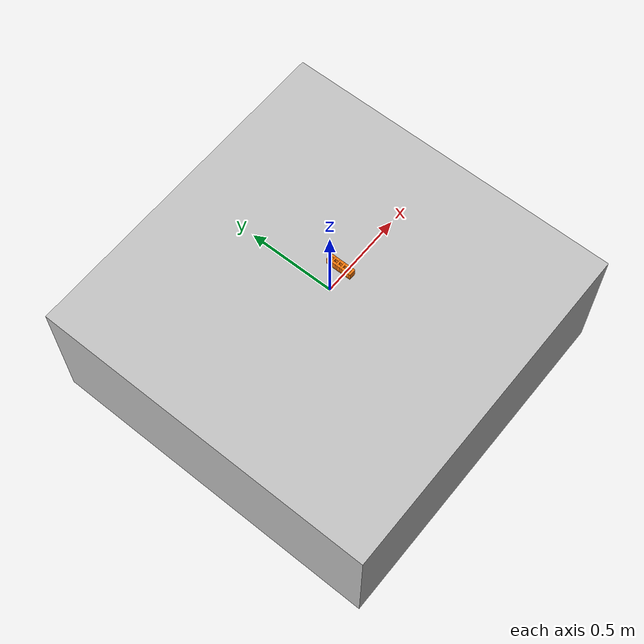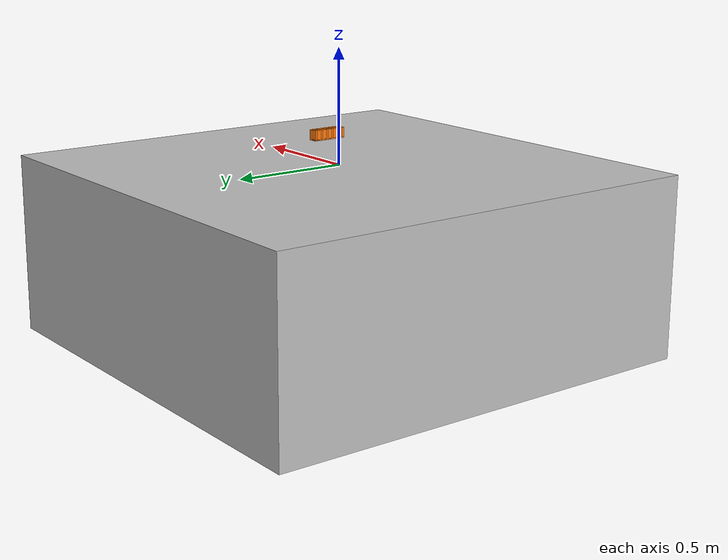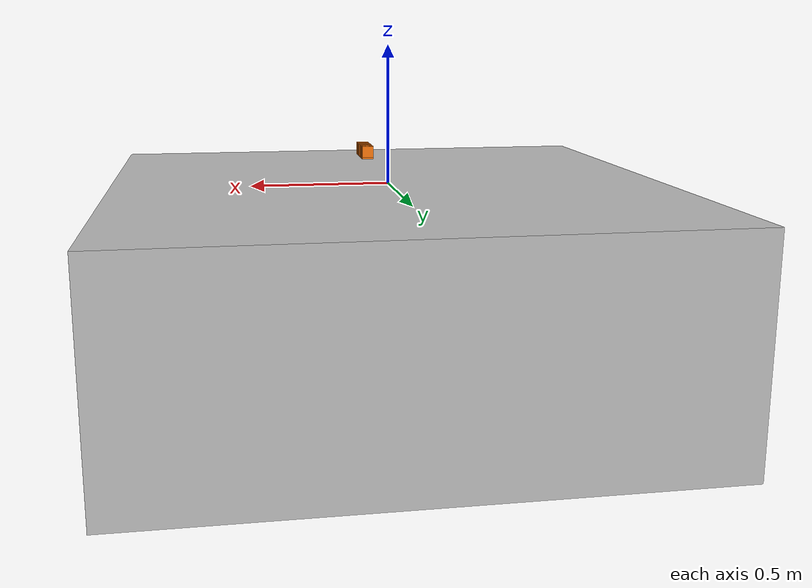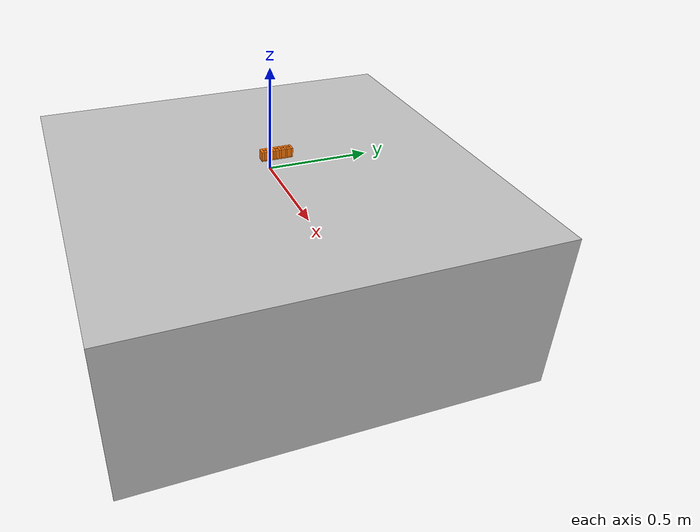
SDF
<sdf version="1.8">
 <world name="ur_hande_dual_arm_tabletop">
  <model name="table">
   <static>true</static>
   <pose>0 0 -0.4 0 0 0</pose>
   <link name="table_link">
    <collision name="table_collision">
     <geometry><box><size>2 2 0.8</size></box></geometry>
     <surface>
      <friction><ode><mu>1</mu><mu2>1</mu2></ode></friction>
      <contact><ode><max_vel>0.2</max_vel><min_depth>0.001</min_depth></ode></contact>
     </surface>
    </collision>
    <visual name="table_visual">
     <geometry><box><size>2 2 0.8</size></box></geometry>
     <material>
      <ambient>0.75 0.75 0.75 1</ambient>
      <diffuse>0.75 0.75 0.75 1</diffuse>
      <specular>0.1 0.1 0.1 1</specular>
     </material>
    </visual>
   </link>
  </model>
  <model name="Sync_CableReceiverBox">
   <static>true</static>
   <pose>0.085 0 0.1225 0 -1.5708 0</pose>
   <link name="body_link">
    <collision name="port_frame_gap_0_collision">
     <pose>0 -0.0696 0 0 0 0</pose>
     <geometry><box><size>0.045 0.0108 0.04</size></box></geometry>
     <surface>
      <friction><ode><mu>1</mu><mu2>1</mu2></ode></friction>
      <contact><ode><max_vel>0.2</max_vel><min_depth>0.001</min_depth></ode></contact>
     </surface>
    </collision>
    <collision name="port_frame_gap_1_collision">
     <pose>0 -0.04215 0 0 0 0</pose>
     <geometry><box><size>0.045 0.0113 0.04</size></box></geometry>
     <surface>
      <friction><ode><mu>1</mu><mu2>1</mu2></ode></friction>
      <contact><ode><max_vel>0.2</max_vel><min_depth>0.001</min_depth></ode></contact>
     </surface>
    </collision>
    <collision name="port_frame_gap_2_collision">
     <pose>0 -0.01425 0 0 0 0</pose>
     <geometry><box><size>0.045 0.0105 0.04</size></box></geometry>
     <surface>
      <friction><ode><mu>1</mu><mu2>1</mu2></ode></friction>
      <contact><ode><max_vel>0.2</max_vel><min_depth>0.001</min_depth></ode></contact>
     </surface>
    </collision>
    <collision name="port_frame_gap_3_collision">
     <pose>0 0.01375 0 0 0 0</pose>
     <geometry><box><size>0.045 0.0095 0.04</size></box></geometry>
     <surface>
      <friction><ode><mu>1</mu><mu2>1</mu2></ode></friction>
      <contact><ode><max_vel>0.2</max_vel><min_depth>0.001</min_depth></ode></contact>
     </surface>
    </collision>
    <collision name="port_frame_gap_4_collision">
     <pose>0 0.04175 0 0 0 0</pose>
     <geometry><box><size>0.045 0.0085 0.04</size></box></geometry>
     <surface>
      <friction><ode><mu>1</mu><mu2>1</mu2></ode></friction>
      <contact><ode><max_vel>0.2</max_vel><min_depth>0.001</min_depth></ode></contact>
     </surface>
    </collision>
    <collision name="port_frame_gap_end_collision">
     <pose>0 0.0705 0 0 0 0</pose>
     <geometry><box><size>0.045 0.009 0.04</size></box></geometry>
     <surface>
      <friction><ode><mu>1</mu><mu2>1</mu2></ode></friction>
      <contact><ode><max_vel>0.2</max_vel><min_depth>0.001</min_depth></ode></contact>
     </surface>
    </collision>
    <collision name="port_frame_loose_2p0mm_top_collision">
     <pose>0 0.056 0.0135 0 0 0</pose>
     <geometry><box><size>0.045 0.02 0.013</size></box></geometry>
     <surface>
      <friction><ode><mu>1</mu><mu2>1</mu2></ode></friction>
      <contact><ode><max_vel>0.2</max_vel><min_depth>0.001</min_depth></ode></contact>
     </surface>
    </collision>
    <collision name="port_frame_loose_2p0mm_bottom_collision">
     <pose>0 0.056 -0.0135 0 0 0</pose>
     <geometry><box><size>0.045 0.02 0.013</size></box></geometry>
     <surface>
      <friction><ode><mu>1</mu><mu2>1</mu2></ode></friction>
      <contact><ode><max_vel>0.2</max_vel><min_depth>0.001</min_depth></ode></contact>
     </surface>
    </collision>
    <collision name="port_frame_loose_1p5mm_top_collision">
     <pose>0 0.028 0.01325 0 0 0</pose>
     <geometry><box><size>0.045 0.019 0.0135</size></box></geometry>
     <surface>
      <friction><ode><mu>1</mu><mu2>1</mu2></ode></friction>
      <contact><ode><max_vel>0.2</max_vel><min_depth>0.001</min_depth></ode></contact>
     </surface>
    </collision>
    <collision name="port_frame_loose_1p5mm_bottom_collision">
     <pose>0 0.028 -0.01325 0 0 0</pose>
     <geometry><box><size>0.045 0.019 0.0135</size></box></geometry>
     <surface>
      <friction><ode><mu>1</mu><mu2>1</mu2></ode></friction>
      <contact><ode><max_vel>0.2</max_vel><min_depth>0.001</min_depth></ode></contact>
     </surface>
    </collision>
    <collision name="port_frame_default_1p0mm_top_collision">
     <pose>0 0 0.013 0 0 0</pose>
     <geometry><box><size>0.045 0.018 0.014</size></box></geometry>
     <surface>
      <friction><ode><mu>1</mu><mu2>1</mu2></ode></friction>
      <contact><ode><max_vel>0.2</max_vel><min_depth>0.001</min_depth></ode></contact>
     </surface>
    </collision>
    <collision name="port_frame_default_1p0mm_bottom_collision">
     <pose>0 0 -0.013 0 0 0</pose>
     <geometry><box><size>0.045 0.018 0.014</size></box></geometry>
     <surface>
      <friction><ode><mu>1</mu><mu2>1</mu2></ode></friction>
      <contact><ode><max_vel>0.2</max_vel><min_depth>0.001</min_depth></ode></contact>
     </surface>
    </collision>
    <collision name="port_frame_tight_0p5mm_top_collision">
     <pose>0 -0.028 0.01275 0 0 0</pose>
     <geometry><box><size>0.045 0.017 0.0145</size></box></geometry>
     <surface>
      <friction><ode><mu>1</mu><mu2>1</mu2></ode></friction>
      <contact><ode><max_vel>0.2</max_vel><min_depth>0.001</min_depth></ode></contact>
     </surface>
    </collision>
    <collision name="port_frame_tight_0p5mm_bottom_collision">
     <pose>0 -0.028 -0.01275 0 0 0</pose>
     <geometry><box><size>0.045 0.017 0.0145</size></box></geometry>
     <surface>
      <friction><ode><mu>1</mu><mu2>1</mu2></ode></friction>
      <contact><ode><max_vel>0.2</max_vel><min_depth>0.001</min_depth></ode></contact>
     </surface>
    </collision>
    <collision name="port_frame_tight_0p2mm_top_collision">
     <pose>0 -0.056 0.0126 0 0 0</pose>
     <geometry><box><size>0.045 0.0164 0.0148</size></box></geometry>
     <surface>
      <friction><ode><mu>1</mu><mu2>1</mu2></ode></friction>
      <contact><ode><max_vel>0.2</max_vel><min_depth>0.001</min_depth></ode></contact>
     </surface>
    </collision>
    <collision name="port_frame_tight_0p2mm_bottom_collision">
     <pose>0 -0.056 -0.0126 0 0 0</pose>
     <geometry><box><size>0.045 0.0164 0.0148</size></box></geometry>
     <surface>
      <friction><ode><mu>1</mu><mu2>1</mu2></ode></friction>
      <contact><ode><max_vel>0.2</max_vel><min_depth>0.001</min_depth></ode></contact>
     </surface>
    </collision>
    <collision name="port_back_wall_collision">
     <pose>-0.0198 0 0 0 0 0</pose>
     <geometry><box><size>0.0054 0.15 0.04</size></box></geometry>
     <surface>
      <friction><ode><mu>1</mu><mu2>1</mu2></ode></friction>
      <contact><ode><max_vel>0.2</max_vel><min_depth>0.001</min_depth></ode></contact>
     </surface>
    </collision>
    <visual name="port_frame_gap_0_visual">
     <pose>0 -0.0696 0 0 0 0</pose>
     <geometry><box><size>0.045 0.0108 0.04</size></box></geometry>
     <material>
      <ambient>1 0.48 0.05 1</ambient>
      <diffuse>1 0.48 0.05 1</diffuse>
      <specular>0.1 0.1 0.1 1</specular>
     </material>
    </visual>
    <visual name="port_frame_gap_1_visual">
     <pose>0 -0.04215 0 0 0 0</pose>
     <geometry><box><size>0.045 0.0113 0.04</size></box></geometry>
     <material>
      <ambient>1 0.48 0.05 1</ambient>
      <diffuse>1 0.48 0.05 1</diffuse>
      <specular>0.1 0.1 0.1 1</specular>
     </material>
    </visual>
    <visual name="port_frame_gap_2_visual">
     <pose>0 -0.01425 0 0 0 0</pose>
     <geometry><box><size>0.045 0.0105 0.04</size></box></geometry>
     <material>
      <ambient>1 0.48 0.05 1</ambient>
      <diffuse>1 0.48 0.05 1</diffuse>
      <specular>0.1 0.1 0.1 1</specular>
     </material>
    </visual>
    <visual name="port_frame_gap_3_visual">
     <pose>0 0.01375 0 0 0 0</pose>
     <geometry><box><size>0.045 0.0095 0.04</size></box></geometry>
     <material>
      <ambient>1 0.48 0.05 1</ambient>
      <diffuse>1 0.48 0.05 1</diffuse>
      <specular>0.1 0.1 0.1 1</specular>
     </material>
    </visual>
    <visual name="port_frame_gap_4_visual">
     <pose>0 0.04175 0 0 0 0</pose>
     <geometry><box><size>0.045 0.0085 0.04</size></box></geometry>
     <material>
      <ambient>1 0.48 0.05 1</ambient>
      <diffuse>1 0.48 0.05 1</diffuse>
      <specular>0.1 0.1 0.1 1</specular>
     </material>
    </visual>
    <visual name="port_frame_gap_end_visual">
     <pose>0 0.0705 0 0 0 0</pose>
     <geometry><box><size>0.045 0.009 0.04</size></box></geometry>
     <material>
      <ambient>1 0.48 0.05 1</ambient>
      <diffuse>1 0.48 0.05 1</diffuse>
      <specular>0.1 0.1 0.1 1</specular>
     </material>
    </visual>
    <visual name="port_frame_loose_2p0mm_top_visual">
     <pose>0 0.056 0.0135 0 0 0</pose>
     <geometry><box><size>0.045 0.02 0.013</size></box></geometry>
     <material>
      <ambient>1 0.48 0.05 1</ambient>
      <diffuse>1 0.48 0.05 1</diffuse>
      <specular>0.1 0.1 0.1 1</specular>
     </material>
    </visual>
    <visual name="port_frame_loose_2p0mm_bottom_visual">
     <pose>0 0.056 -0.0135 0 0 0</pose>
     <geometry><box><size>0.045 0.02 0.013</size></box></geometry>
     <material>
      <ambient>1 0.48 0.05 1</ambient>
      <diffuse>1 0.48 0.05 1</diffuse>
      <specular>0.1 0.1 0.1 1</specular>
     </material>
    </visual>
    <visual name="port_frame_loose_1p5mm_top_visual">
     <pose>0 0.028 0.01325 0 0 0</pose>
     <geometry><box><size>0.045 0.019 0.0135</size></box></geometry>
     <material>
      <ambient>1 0.48 0.05 1</ambient>
      <diffuse>1 0.48 0.05 1</diffuse>
      <specular>0.1 0.1 0.1 1</specular>
     </material>
    </visual>
    <visual name="port_frame_loose_1p5mm_bottom_visual">
     <pose>0 0.028 -0.01325 0 0 0</pose>
     <geometry><box><size>0.045 0.019 0.0135</size></box></geometry>
     <material>
      <ambient>1 0.48 0.05 1</ambient>
      <diffuse>1 0.48 0.05 1</diffuse>
      <specular>0.1 0.1 0.1 1</specular>
     </material>
    </visual>
    <visual name="port_frame_default_1p0mm_top_visual">
     <pose>0 0 0.013 0 0 0</pose>
     <geometry><box><size>0.045 0.018 0.014</size></box></geometry>
     <material>
      <ambient>1 0.48 0.05 1</ambient>
      <diffuse>1 0.48 0.05 1</diffuse>
      <specular>0.1 0.1 0.1 1</specular>
     </material>
    </visual>
    <visual name="port_frame_default_1p0mm_bottom_visual">
     <pose>0 0 -0.013 0 0 0</pose>
     <geometry><box><size>0.045 0.018 0.014</size></box></geometry>
     <material>
      <ambient>1 0.48 0.05 1</ambient>
      <diffuse>1 0.48 0.05 1</diffuse>
      <specular>0.1 0.1 0.1 1</specular>
     </material>
    </visual>
    <visual name="port_frame_tight_0p5mm_top_visual">
     <pose>0 -0.028 0.01275 0 0 0</pose>
     <geometry><box><size>0.045 0.017 0.0145</size></box></geometry>
     <material>
      <ambient>1 0.48 0.05 1</ambient>
      <diffuse>1 0.48 0.05 1</diffuse>
      <specular>0.1 0.1 0.1 1</specular>
     </material>
    </visual>
    <visual name="port_frame_tight_0p5mm_bottom_visual">
     <pose>0 -0.028 -0.01275 0 0 0</pose>
     <geometry><box><size>0.045 0.017 0.0145</size></box></geometry>
     <material>
      <ambient>1 0.48 0.05 1</ambient>
      <diffuse>1 0.48 0.05 1</diffuse>
      <specular>0.1 0.1 0.1 1</specular>
     </material>
    </visual>
    <visual name="port_frame_tight_0p2mm_top_visual">
     <pose>0 -0.056 0.0126 0 0 0</pose>
     <geometry><box><size>0.045 0.0164 0.0148</size></box></geometry>
     <material>
      <ambient>1 0.48 0.05 1</ambient>
      <diffuse>1 0.48 0.05 1</diffuse>
      <specular>0.1 0.1 0.1 1</specular>
     </material>
    </visual>
    <visual name="port_frame_tight_0p2mm_bottom_visual">
     <pose>0 -0.056 -0.0126 0 0 0</pose>
     <geometry><box><size>0.045 0.0164 0.0148</size></box></geometry>
     <material>
      <ambient>1 0.48 0.05 1</ambient>
      <diffuse>1 0.48 0.05 1</diffuse>
      <specular>0.1 0.1 0.1 1</specular>
     </material>
    </visual>
    <visual name="port_back_wall_visual">
     <pose>-0.0198 0 0 0 0 0</pose>
     <geometry><box><size>0.0054 0.15 0.04</size></box></geometry>
     <material>
      <ambient>1 0.48 0.05 1</ambient>
      <diffuse>1 0.48 0.05 1</diffuse>
      <specular>0.1 0.1 0.1 1</specular>
     </material>
    </visual>
   </link>
  </model>
 </world>
</sdf>
